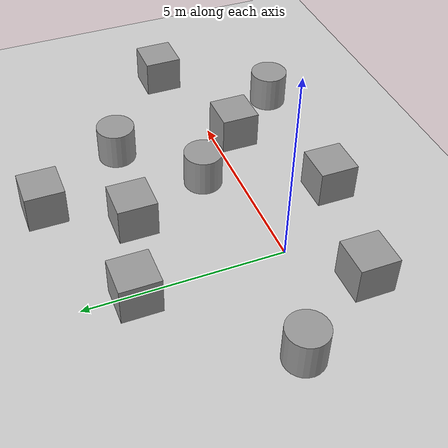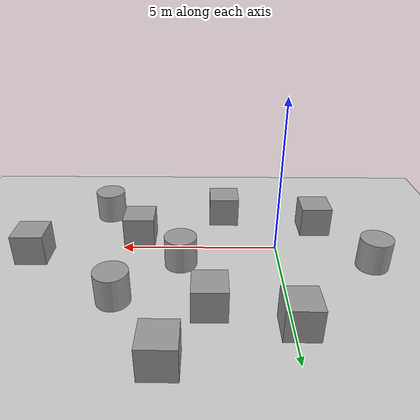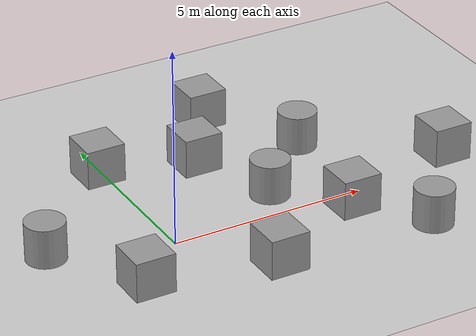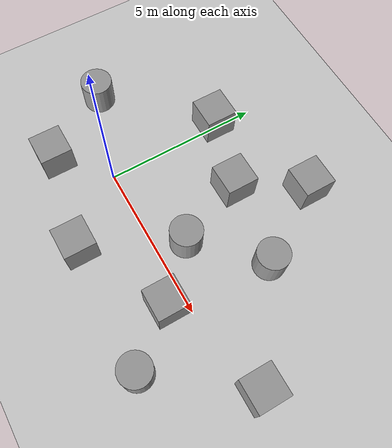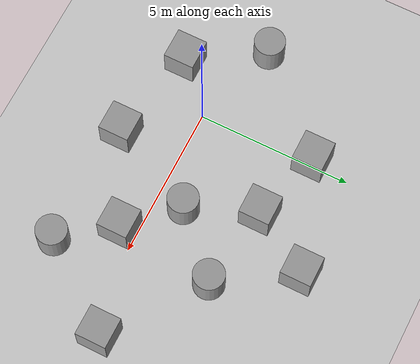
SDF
<sdf version="1.7">
 <world name="default">
  <light name="sun" type="directional">
   <pose>0 0 10 0 -0 0</pose>
   <diffuse>0.8 0.8 0.8 1</diffuse>
   <specular>0.2 0.2 0.2 1</specular>
   <attenuation>
    <range>1000</range>
    <constant>0.9</constant>
    <linear>0.01</linear>
    <quadratic>0.001</quadratic>
   </attenuation>
   <direction>-0.5 0.1 -0.9</direction>
   <spot><inner_angle>0</inner_angle><outer_angle>0</outer_angle><falloff>0</falloff></spot>
  </light>
  <model name="ground_plane">
   <static>1</static>
   <link name="link">
    <collision name="collision">
     <geometry><plane><normal>0 0 1</normal><size>100 100</size></plane></geometry>
     <surface>
      <contact><collide_bitmask>65535</collide_bitmask></contact>
      <friction><ode><mu>100</mu><mu2>50</mu2></ode></friction>
     </surface>
    </collision>
    <visual name="visual">
     <cast_shadows>0</cast_shadows>
     <geometry><plane><normal>0 0 1</normal><size>100 100</size></plane></geometry>
     <material>
      <script><uri>file://media/materials/scripts/gazebo.material</uri><name>Gazebo/Grey</name></script>
     </material>
    </visual>
   </link>
  </model>
  <gravity>0 0 -9.8</gravity>
  <magnetic_field>6e-06 2.3e-05 -4.2e-05</magnetic_field>
  <atmosphere type="adiabatic"/>
  <physics type="ode">
   <max_step_size>0.001</max_step_size>
   <real_time_factor>1</real_time_factor>
   <real_time_update_rate>1000</real_time_update_rate>
  </physics>
  <scene><ambient>0.4 0.4 0.4 1</ambient><background>0.7 0.7 0.7 1</background><shadows>1</shadows></scene>
  <spherical_coordinates>
   <surface_model>EARTH_WGS84</surface_model>
   <latitude_deg>0</latitude_deg>
   <longitude_deg>0</longitude_deg>
   <elevation>0</elevation>
   <heading_deg>0</heading_deg>
  </spherical_coordinates>
  <model name="unit_box">
   <pose>-0.137291 3.7515 0.499995 1e-05 -0 0</pose>
   <link name="link">
    <inertial>
     <mass>1</mass>
     <inertia>
      <ixx>0.166667</ixx>
      <ixy>0</ixy>
      <ixz>0</ixz>
      <iyy>0.166667</iyy>
      <iyz>0</iyz>
      <izz>0.166667</izz>
     </inertia>
    </inertial>
    <collision name="collision"><geometry><box><size>1 1 1</size></box></geometry></collision>
    <visual name="visual">
     <geometry><box><size>1 1 1</size></box></geometry>
     <material>
      <script><name>Gazebo/Grey</name><uri>file://media/materials/scripts/gazebo.material</uri></script>
     </material>
    </visual>
   </link>
  </model>
  <model name="unit_box_2">
   <pose>1.64848 -1.99169 0.499995 0 -1e-05 0</pose>
   <link name="link">
    <inertial>
     <mass>1</mass>
     <inertia>
      <ixx>0.166667</ixx>
      <ixy>0</ixy>
      <ixz>0</ixz>
      <iyy>0.166667</iyy>
      <iyz>0</iyz>
      <izz>0.166667</izz>
     </inertia>
    </inertial>
    <collision name="collision"><geometry><box><size>1 1 1</size></box></geometry></collision>
    <visual name="visual">
     <geometry><box><size>1 1 1</size></box></geometry>
     <material>
      <script><name>Gazebo/Grey</name><uri>file://media/materials/scripts/gazebo.material</uri></script>
     </material>
    </visual>
   </link>
  </model>
  <model name="unit_cylinder">
   <pose>4.86379 2.6833 0.499998 3e-06 -2e-06 0</pose>
   <link name="link">
    <inertial>
     <mass>1</mass>
     <inertia><ixx>0.145833</ixx><ixy>0</ixy><ixz>0</ixz><iyy>0.145833</iyy><iyz>0</iyz><izz>0.125</izz></inertia>
    </inertial>
    <collision name="collision">
     <geometry><cylinder><radius>0.5</radius><length>1</length></cylinder></geometry>
    </collision>
    <visual name="visual">
     <geometry><cylinder><radius>0.5</radius><length>1</length></cylinder></geometry>
     <material>
      <script><name>Gazebo/Grey</name><uri>file://media/materials/scripts/gazebo.material</uri></script>
     </material>
    </visual>
   </link>
  </model>
  <model name="unit_cylinder_0">
   <pose>5.73639 -2.15964 0.499993 -3e-06 2e-06 0</pose>
   <link name="link">
    <inertial>
     <mass>1</mass>
     <inertia><ixx>0.145833</ixx><ixy>0</ixy><ixz>0</ixz><iyy>0.145833</iyy><iyz>0</iyz><izz>0.125</izz></inertia>
    </inertial>
    <collision name="collision">
     <geometry><cylinder><radius>0.5</radius><length>1</length></cylinder></geometry>
    </collision>
    <visual name="visual">
     <geometry><cylinder><radius>0.5</radius><length>1</length></cylinder></geometry>
     <material>
      <script><name>Gazebo/Grey</name><uri>file://media/materials/scripts/gazebo.material</uri></script>
     </material>
    </visual>
   </link>
  </model>
  <model name="unit_box_3">
   <pose>-1.45082 -1.32478 0.499995 1e-05 -0 0</pose>
   <link name="link">
    <inertial>
     <mass>1</mass>
     <inertia>
      <ixx>0.166667</ixx>
      <ixy>0</ixy>
      <ixz>0</ixz>
      <iyy>0.166667</iyy>
      <iyz>0</iyz>
      <izz>0.166667</izz>
     </inertia>
    </inertial>
    <collision name="collision"><geometry><box><size>1 1 1</size></box></geometry></collision>
    <visual name="visual">
     <geometry><box><size>1 1 1</size></box></geometry>
     <material>
      <script><name>Gazebo/Grey</name><uri>file://media/materials/scripts/gazebo.material</uri></script>
     </material>
    </visual>
   </link>
  </model>
  <model name="unit_box_0">
   <pose>3.36269 5.02443 0.499995 0 1e-05 0</pose>
   <link name="link">
    <inertial>
     <mass>1</mass>
     <inertia>
      <ixx>0.166667</ixx>
      <ixy>0</ixy>
      <ixz>0</ixz>
      <iyy>0.166667</iyy>
      <iyz>0</iyz>
      <izz>0.166667</izz>
     </inertia>
    </inertial>
    <collision name="collision"><geometry><box><size>1 1 1</size></box></geometry></collision>
    <visual name="visual">
     <geometry><box><size>1 1 1</size></box></geometry>
     <material>
      <script><name>Gazebo/Grey</name><uri>file://media/materials/scripts/gazebo.material</uri></script>
     </material>
    </visual>
   </link>
  </model>
  <model name="unit_box_1">
   <pose>7.74815 0.513531 0.499995 0 1e-05 0</pose>
   <link name="link">
    <inertial>
     <mass>1</mass>
     <inertia>
      <ixx>0.166667</ixx>
      <ixy>0</ixy>
      <ixz>0</ixz>
      <iyy>0.166667</iyy>
      <iyz>0</iyz>
      <izz>0.166667</izz>
     </inertia>
    </inertial>
    <collision name="collision"><geometry><box><size>1 1 1</size></box></geometry></collision>
    <visual name="visual">
     <geometry><box><size>1 1 1</size></box></geometry>
     <material>
      <script><name>Gazebo/Grey</name><uri>file://media/materials/scripts/gazebo.material</uri></script>
     </material>
    </visual>
   </link>
  </model>
  <model name="unit_cylinder_2">
   <pose>3.05811 0.899164 0.499998 3e-06 -4e-06 0</pose>
   <link name="link">
    <inertial>
     <mass>1</mass>
     <inertia><ixx>0.145833</ixx><ixy>0</ixy><ixz>0</ixz><iyy>0.145833</iyy><iyz>0</iyz><izz>0.125</izz></inertia>
    </inertial>
    <collision name="collision">
     <geometry><cylinder><radius>0.5</radius><length>1</length></cylinder></geometry>
    </collision>
    <visual name="visual">
     <geometry><cylinder><radius>0.5</radius><length>1</length></cylinder></geometry>
     <material>
      <script><name>Gazebo/Grey</name><uri>file://media/materials/scripts/gazebo.material</uri></script>
     </material>
    </visual>
   </link>
  </model>
  <model name="unit_box_4">
   <pose>2.1768 3.07585 0.499995 0 1e-05 0</pose>
   <link name="link">
    <inertial>
     <mass>1</mass>
     <inertia>
      <ixx>0.166667</ixx>
      <ixy>0</ixy>
      <ixz>0</ixz>
      <iyy>0.166667</iyy>
      <iyz>0</iyz>
      <izz>0.166667</izz>
     </inertia>
    </inertial>
    <collision name="collision"><geometry><box><size>1 1 1</size></box></geometry></collision>
    <visual name="visual">
     <geometry><box><size>1 1 1</size></box></geometry>
     <material>
      <script><name>Gazebo/Grey</name><uri>file://media/materials/scripts/gazebo.material</uri></script>
     </material>
    </visual>
   </link>
  </model>
  <model name="unit_box_5">
   <pose>4.47325 -0.543933 0.499995 -1e-05 -0 -0</pose>
   <link name="link">
    <inertial>
     <mass>1</mass>
     <inertia>
      <ixx>0.166667</ixx>
      <ixy>0</ixy>
      <ixz>0</ixz>
      <iyy>0.166667</iyy>
      <iyz>0</iyz>
      <izz>0.166667</izz>
     </inertia>
    </inertial>
    <collision name="collision"><geometry><box><size>1 1 1</size></box></geometry></collision>
    <visual name="visual">
     <geometry><box><size>1 1 1</size></box></geometry>
     <material>
      <script><name>Gazebo/Grey</name><uri>file://media/materials/scripts/gazebo.material</uri></script>
     </material>
    </visual>
   </link>
  </model>
  <model name="unit_cylinder_3">
   <pose>-2.87946 0.930457 0.499998 3e-06 4e-06 -0</pose>
   <link name="link">
    <inertial>
     <mass>1</mass>
     <inertia><ixx>0.145833</ixx><ixy>0</ixy><ixz>0</ixz><iyy>0.145833</iyy><iyz>0</iyz><izz>0.125</izz></inertia>
    </inertial>
    <collision name="collision">
     <geometry><cylinder><radius>0.5</radius><length>1</length></cylinder></geometry>
    </collision>
    <visual name="visual">
     <geometry><cylinder><radius>0.5</radius><length>1</length></cylinder></geometry>
     <material>
      <script><name>Gazebo/Grey</name><uri>file://media/materials/scripts/gazebo.material</uri></script>
     </material>
    </visual>
   </link>
  </model>
 </world>
</sdf>
